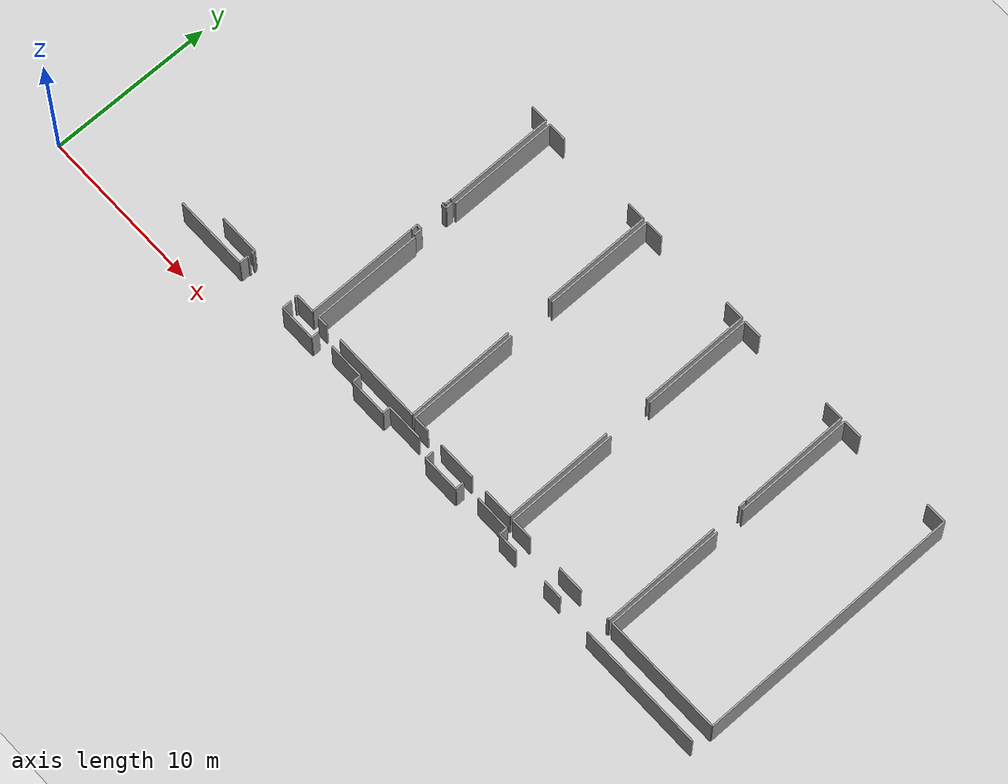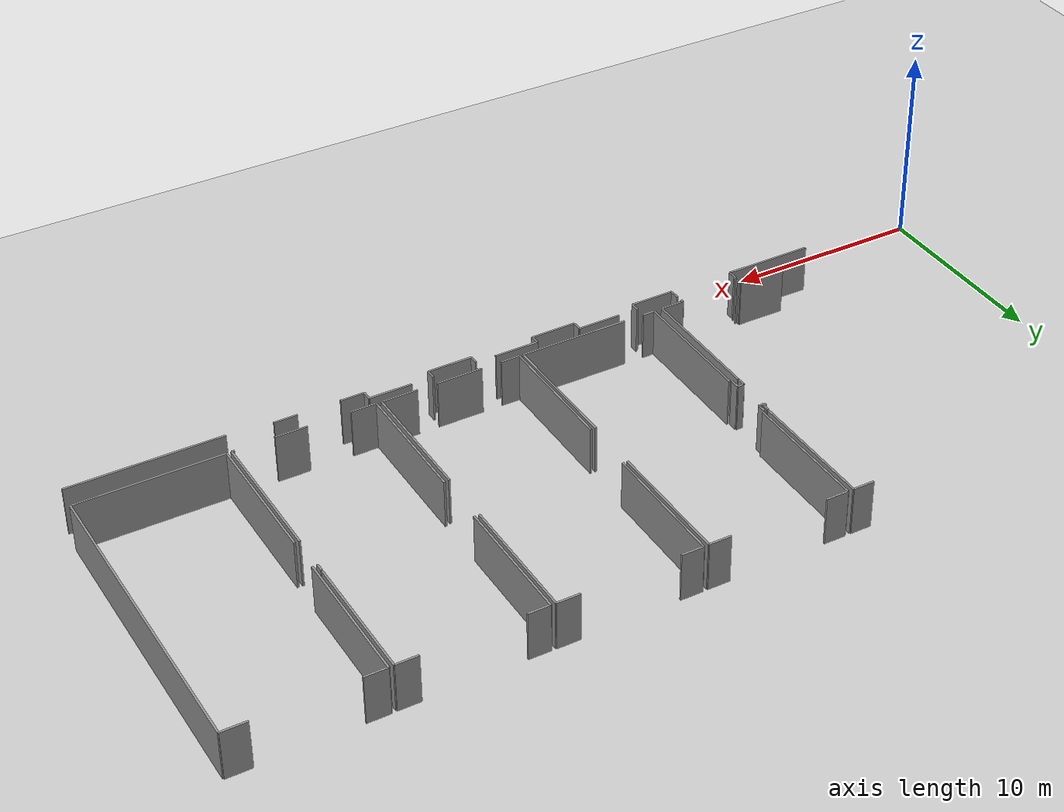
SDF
<sdf version="1.6">
 <world name="default">
  <model name="ground_plane">
   <static>1</static>
   <link name="link">
    <collision name="collision">
     <geometry><plane><normal>0 0 1</normal><size>100 100</size></plane></geometry>
     <surface><friction><ode><mu>100</mu><mu2>50</mu2></ode></friction></surface>
    </collision>
    <visual name="visual">
     <cast_shadows>0</cast_shadows>
     <geometry><plane><normal>0 0 1</normal><size>100 100</size></plane></geometry>
     <material>
      <script><uri>file://media/materials/scripts/gazebo.material</uri><name>Gazebo/Grey</name></script>
     </material>
    </visual>
   </link>
  </model>
  <model name="50045233">
   <static>1</static>
   <link name="Wall_8">
    <collision name="Wall_8_Collision">
     <geometry><box><size>0.318771612576 0.1 2.5</size></box></geometry>
     <pose>0.159385806288 0 1.25 0 0 0</pose>
    </collision>
    <visual name="Wall_8_Visual">
     <pose>0.159385806288 0 1.25 0 0 0</pose>
     <geometry><box><size>0.318771612576 0.1 2.5</size></box></geometry>
     <material>
      <script><uri>file://media/materials/scripts/gazebo.material</uri><name>Gazebo/Grey</name></script>
      <ambient>1 1 1 1</ambient>
     </material>
    </visual>
    <pose>63.6124488436 -6.74153738777 0 0 0 -1.57079632679</pose>
   </link>
   <link name="Wall_9">
    <collision name="Wall_9_Collision">
     <geometry><box><size>0.105834205768 0.1 2.5</size></box></geometry>
     <pose>0.0529171028838 0 1.25 0 0 0</pose>
    </collision>
    <visual name="Wall_9_Visual">
     <pose>0.0529171028838 0 1.25 0 0 0</pose>
     <geometry><box><size>0.105834205768 0.1 2.5</size></box></geometry>
     <material>
      <script><uri>file://media/materials/scripts/gazebo.material</uri><name>Gazebo/Grey</name></script>
      <ambient>1 1 1 1</ambient>
     </material>
    </visual>
    <pose>63.6124488436 -7.06030900035 0 0 0 3.14159265359</pose>
   </link>
   <link name="Wall_10">
    <collision name="Wall_10_Collision">
     <geometry><box><size>0.126265029663 0.1 2.5</size></box></geometry>
     <pose>0.0631325148314 0 1.25 0 0 0</pose>
    </collision>
    <visual name="Wall_10_Visual">
     <pose>0.0631325148314 0 1.25 0 0 0</pose>
     <geometry><box><size>0.126265029663 0.1 2.5</size></box></geometry>
     <material>
      <script><uri>file://media/materials/scripts/gazebo.material</uri><name>Gazebo/Grey</name></script>
      <ambient>1 1 1 1</ambient>
     </material>
    </visual>
    <pose>63.5066146379 -7.06030900035 0 0 0 -1.57079632679</pose>
   </link>
   <link name="Wall_11">
    <collision name="Wall_11_Collision">
     <geometry><box><size>0.296310396244 0.1 2.5</size></box></geometry>
     <pose>0.148155198122 0 1.25 0 0 0</pose>
    </collision>
    <visual name="Wall_11_Visual">
     <pose>0.148155198122 0 1.25 0 0 0</pose>
     <geometry><box><size>0.296310396244 0.1 2.5</size></box></geometry>
     <material>
      <script><uri>file://media/materials/scripts/gazebo.material</uri><name>Gazebo/Grey</name></script>
      <ambient>1 1 1 1</ambient>
     </material>
    </visual>
    <pose>63.5066146379 -7.18657403001 0 0 0 0.0</pose>
   </link>
   <link name="Wall_12">
    <collision name="Wall_12_Collision">
     <geometry><box><size>0.438945464928 0.1 2.5</size></box></geometry>
     <pose>0.219472732464 0 1.25 0 0 0</pose>
    </collision>
    <visual name="Wall_12_Visual">
     <pose>0.219472732464 0 1.25 0 0 0</pose>
     <geometry><box><size>0.438945464928 0.1 2.5</size></box></geometry>
     <material>
      <script><uri>file://media/materials/scripts/gazebo.material</uri><name>Gazebo/Grey</name></script>
      <ambient>1 1 1 1</ambient>
     </material>
    </visual>
    <pose>63.8029250341 -7.18657403001 0 0 0 1.57079632679</pose>
   </link>
   <link name="Wall_13">
    <collision name="Wall_13_Collision">
     <geometry><box><size>0.412169664668 0.1 2.5</size></box></geometry>
     <pose>0.206084832334 0 1.25 0 0 0</pose>
    </collision>
    <visual name="Wall_13_Visual">
     <pose>0.206084832334 0 1.25 0 0 0</pose>
     <geometry><box><size>0.412169664668 0.1 2.5</size></box></geometry>
     <material>
      <script><uri>file://media/materials/scripts/gazebo.material</uri><name>Gazebo/Grey</name></script>
      <ambient>1 1 1 1</ambient>
     </material>
    </visual>
    <pose>85.9797595254 -6.74762856508 0 0 0 -1.57079632679</pose>
   </link>
   <link name="Wall_14">
    <collision name="Wall_14_Collision">
     <geometry><box><size>7.19850258558 0.1 2.5</size></box></geometry>
     <pose>3.59925129279 0 1.25 0 0 0</pose>
    </collision>
    <visual name="Wall_14_Visual">
     <pose>3.59925129279 0 1.25 0 0 0</pose>
     <geometry><box><size>7.19850258558 0.1 2.5</size></box></geometry>
     <material>
      <script><uri>file://media/materials/scripts/gazebo.material</uri><name>Gazebo/Grey</name></script>
      <ambient>1 1 1 1</ambient>
     </material>
    </visual>
    <pose>85.9797595254 -8.92370165921 0 0 0 -1.57079632679</pose>
   </link>
   <link name="Wall_15">
    <collision name="Wall_15_Collision">
     <geometry><box><size>0.139716379556 0.1 2.5</size></box></geometry>
     <pose>0.0698581897782 0 1.25 0 0 0</pose>
    </collision>
    <visual name="Wall_15_Visual">
     <pose>0.0698581897782 0 1.25 0 0 0</pose>
     <geometry><box><size>0.139716379556 0.1 2.5</size></box></geometry>
     <material>
      <script><uri>file://media/materials/scripts/gazebo.material</uri><name>Gazebo/Grey</name></script>
      <ambient>1 1 1 1</ambient>
     </material>
    </visual>
    <pose>85.9797595254 -16.1222042448 0 0 0 3.14159265359</pose>
   </link>
   <link name="Wall_16">
    <collision name="Wall_16_Collision">
     <geometry><box><size>1.61073570001 0.1 2.5</size></box></geometry>
     <pose>0.805367850005 0 1.25 0 0 0</pose>
    </collision>
    <visual name="Wall_16_Visual">
     <pose>0.805367850005 0 1.25 0 0 0</pose>
     <geometry><box><size>1.61073570001 0.1 2.5</size></box></geometry>
     <material>
      <script><uri>file://media/materials/scripts/gazebo.material</uri><name>Gazebo/Grey</name></script>
      <ambient>1 1 1 1</ambient>
     </material>
    </visual>
    <pose>83.895561689 -16.1222042448 0 0 0 3.14159265359</pose>
   </link>
   <link name="Wall_17">
    <collision name="Wall_17_Collision">
     <geometry><box><size>1.30211604962 0.1 2.5</size></box></geometry>
     <pose>0.651058024809 0 1.25 0 0 0</pose>
    </collision>
    <visual name="Wall_17_Visual">
     <pose>0.651058024809 0 1.25 0 0 0</pose>
     <geometry><box><size>1.30211604962 0.1 2.5</size></box></geometry>
     <material>
      <script><uri>file://media/materials/scripts/gazebo.material</uri><name>Gazebo/Grey</name></script>
      <ambient>1 1 1 1</ambient>
     </material>
    </visual>
    <pose>80.1170013642 -16.1222042448 0 0 0 3.14159265359</pose>
   </link>
   <link name="Wall_18">
    <collision name="Wall_18_Collision">
     <geometry><box><size>6.72021826719 0.1 2.5</size></box></geometry>
     <pose>3.36010913359 0 1.25 0 0 0</pose>
    </collision>
    <visual name="Wall_18_Visual">
     <pose>3.36010913359 0 1.25 0 0 0</pose>
     <geometry><box><size>6.72021826719 0.1 2.5</size></box></geometry>
     <material>
      <script><uri>file://media/materials/scripts/gazebo.material</uri><name>Gazebo/Grey</name></script>
      <ambient>1 1 1 1</ambient>
     </material>
    </visual>
    <pose>78.8148853146 -16.1222042448 0 0 0 1.57079632679</pose>
   </link>
   <link name="Wall_19">
    <collision name="Wall_19_Collision">
     <geometry><box><size>0.479045715555 0.1 2.5</size></box></geometry>
     <pose>0.239522857777 0 1.25 0 0 0</pose>
    </collision>
    <visual name="Wall_19_Visual">
     <pose>0.239522857777 0 1.25 0 0 0</pose>
     <geometry><box><size>0.479045715555 0.1 2.5</size></box></geometry>
     <material>
      <script><uri>file://media/materials/scripts/gazebo.material</uri><name>Gazebo/Grey</name></script>
      <ambient>1 1 1 1</ambient>
     </material>
    </visual>
    <pose>63.8205640684 -9.4019859776 0 0 0 1.57079632679</pose>
   </link>
   <link name="Wall_20">
    <collision name="Wall_20_Collision">
     <geometry><box><size>0.324735890359 0.1 2.5</size></box></geometry>
     <pose>0.162367945179 0 1.25 0 0 0</pose>
    </collision>
    <visual name="Wall_20_Visual">
     <pose>0.162367945179 0 1.25 0 0 0</pose>
     <geometry><box><size>0.324735890359 0.1 2.5</size></box></geometry>
     <material>
      <script><uri>file://media/materials/scripts/gazebo.material</uri><name>Gazebo/Grey</name></script>
      <ambient>1 1 1 1</ambient>
     </material>
    </visual>
    <pose>63.8205640684 -8.92294026205 0 0 0 3.14159265359</pose>
   </link>
   <link name="Wall_21">
    <collision name="Wall_21_Collision">
     <geometry><box><size>0.393134735573 0.1 2.5</size></box></geometry>
     <pose>0.196567367787 0 1.25 0 0 0</pose>
    </collision>
    <visual name="Wall_21_Visual">
     <pose>0.196567367787 0 1.25 0 0 0</pose>
     <geometry><box><size>0.393134735573 0.1 2.5</size></box></geometry>
     <material>
      <script><uri>file://media/materials/scripts/gazebo.material</uri><name>Gazebo/Grey</name></script>
      <ambient>1 1 1 1</ambient>
     </material>
    </visual>
    <pose>63.495828178 -8.92294026205 0 0 0 -1.57079632679</pose>
   </link>
   <link name="Wall_52">
    <collision name="Wall_52_Collision">
     <geometry><box><size>6.67275784398 0.1 2.5</size></box></geometry>
     <pose>3.33637892199 0 1.25 0 0 0</pose>
    </collision>
    <visual name="Wall_52_Visual">
     <pose>3.33637892199 0 1.25 0 0 0</pose>
     <geometry><box><size>6.67275784398 0.1 2.5</size></box></geometry>
     <material>
      <script><uri>file://media/materials/scripts/gazebo.material</uri><name>Gazebo/Grey</name></script>
      <ambient>1 1 1 1</ambient>
     </material>
    </visual>
    <pose>63.6316106723 -6.68417880143 0 0 0 1.57079632679</pose>
   </link>
   <link name="Wall_53">
    <collision name="Wall_53_Collision">
     <geometry><box><size>1.07090511088 0.1 2.5</size></box></geometry>
     <pose>0.535452555439 0 1.25 0 0 0</pose>
    </collision>
    <visual name="Wall_53_Visual">
     <pose>0.535452555439 0 1.25 0 0 0</pose>
     <geometry><box><size>1.07090511088 0.1 2.5</size></box></geometry>
     <material>
      <script><uri>file://media/materials/scripts/gazebo.material</uri><name>Gazebo/Grey</name></script>
      <ambient>1 1 1 1</ambient>
     </material>
    </visual>
    <pose>63.6316106723 -0.0114209574569 0 0 0 3.14159265359</pose>
   </link>
   <link name="Wall_56">
    <collision name="Wall_56_Collision">
     <geometry><box><size>6.65181942197 0.1 2.5</size></box></geometry>
     <pose>3.32590971099 0 1.25 0 0 0</pose>
    </collision>
    <visual name="Wall_56_Visual">
     <pose>3.32590971099 0 1.25 0 0 0</pose>
     <geometry><box><size>6.65181942197 0.1 2.5</size></box></geometry>
     <material>
      <script><uri>file://media/materials/scripts/gazebo.material</uri><name>Gazebo/Grey</name></script>
      <ambient>1 1 1 1</ambient>
     </material>
    </visual>
    <pose>63.9269058723 -6.66755496336 0 0 0 1.57079632679</pose>
   </link>
   <link name="Wall_57">
    <collision name="Wall_57_Collision">
     <geometry><box><size>1.1188731322 0.1 2.5</size></box></geometry>
     <pose>0.559436566099 0 1.25 0 0 0</pose>
    </collision>
    <visual name="Wall_57_Visual">
     <pose>0.559436566099 0 1.25 0 0 0</pose>
     <geometry><box><size>1.1188731322 0.1 2.5</size></box></geometry>
     <material>
      <script><uri>file://media/materials/scripts/gazebo.material</uri><name>Gazebo/Grey</name></script>
      <ambient>1 1 1 1</ambient>
     </material>
    </visual>
    <pose>63.9269058723 -0.0157355413851 0 0 0 0.0</pose>
   </link>
   <link name="Wall_58">
    <collision name="Wall_58_Collision">
     <geometry><box><size>1.13181688398 0.1 2.5</size></box></geometry>
     <pose>0.565908441991 0 1.25 0 0 0</pose>
    </collision>
    <visual name="Wall_58_Visual">
     <pose>0.565908441991 0 1.25 0 0 0</pose>
     <geometry><box><size>1.13181688398 0.1 2.5</size></box></geometry>
     <material>
      <script><uri>file://media/materials/scripts/gazebo.material</uri><name>Gazebo/Grey</name></script>
      <ambient>1 1 1 1</ambient>
     </material>
    </visual>
    <pose>69.9795057263 -0.0157355413851 0 0 0 0.0</pose>
   </link>
   <link name="Wall_59">
    <collision name="Wall_59_Collision">
     <geometry><box><size>6.65183956517 0.1 2.5</size></box></geometry>
     <pose>3.32591978258 0 1.25 0 0 0</pose>
    </collision>
    <visual name="Wall_59_Visual">
     <pose>3.32591978258 0 1.25 0 0 0</pose>
     <geometry><box><size>6.65183956517 0.1 2.5</size></box></geometry>
     <material>
      <script><uri>file://media/materials/scripts/gazebo.material</uri><name>Gazebo/Grey</name></script>
      <ambient>1 1 1 1</ambient>
     </material>
    </visual>
    <pose>71.1113226103 -0.0157355413851 0 0 0 -1.56833534508</pose>
   </link>
   <link name="Wall_60">
    <collision name="Wall_60_Collision">
     <geometry><box><size>6.66374797754 0.1 2.5</size></box></geometry>
     <pose>3.33187398877 0 1.25 0 0 0</pose>
    </collision>
    <visual name="Wall_60_Visual">
     <pose>3.33187398877 0 1.25 0 0 0</pose>
     <geometry><box><size>6.66374797754 0.1 2.5</size></box></geometry>
     <material>
      <script><uri>file://media/materials/scripts/gazebo.material</uri><name>Gazebo/Grey</name></script>
      <ambient>1 1 1 1</ambient>
     </material>
    </visual>
    <pose>71.367786555 -6.67593033216 0 0 0 1.57079632679</pose>
   </link>
   <link name="Wall_61">
    <collision name="Wall_61_Collision">
     <geometry><box><size>1.11671584023 0.1 2.5</size></box></geometry>
     <pose>0.558357920117 0 1.25 0 0 0</pose>
    </collision>
    <visual name="Wall_61_Visual">
     <pose>0.558357920117 0 1.25 0 0 0</pose>
     <geometry><box><size>1.11671584023 0.1 2.5</size></box></geometry>
     <material>
      <script><uri>file://media/materials/scripts/gazebo.material</uri><name>Gazebo/Grey</name></script>
      <ambient>1 1 1 1</ambient>
     </material>
    </visual>
    <pose>71.367786555 -0.0121823546207 0 0 0 0.0</pose>
   </link>
   <link name="Wall_62">
    <collision name="Wall_62_Collision">
     <geometry><box><size>1.17356682846 0.1 2.5</size></box></geometry>
     <pose>0.586783414232 0 1.25 0 0 0</pose>
    </collision>
    <visual name="Wall_62_Visual">
     <pose>0.586783414232 0 1.25 0 0 0</pose>
     <geometry><box><size>1.17356682846 0.1 2.5</size></box></geometry>
     <material>
      <script><uri>file://media/materials/scripts/gazebo.material</uri><name>Gazebo/Grey</name></script>
      <ambient>1 1 1 1</ambient>
     </material>
    </visual>
    <pose>77.3867580343 -0.0121823546207 0 0 0 0.0</pose>
   </link>
   <link name="Wall_63">
    <collision name="Wall_63_Collision">
     <geometry><box><size>6.66375124476 0.1 2.5</size></box></geometry>
     <pose>3.33187562238 0 1.25 0 0 0</pose>
    </collision>
    <visual name="Wall_63_Visual">
     <pose>3.33187562238 0 1.25 0 0 0</pose>
     <geometry><box><size>6.66375124476 0.1 2.5</size></box></geometry>
     <material>
      <script><uri>file://media/materials/scripts/gazebo.material</uri><name>Gazebo/Grey</name></script>
      <ambient>1 1 1 1</ambient>
     </material>
    </visual>
    <pose>78.5603248628 -0.0121823546207 0 0 0 -1.57178657632</pose>
   </link>
   <link name="Wall_64">
    <collision name="Wall_64_Collision">
     <geometry><box><size>6.65258081914 0.1 2.5</size></box></geometry>
     <pose>3.32629040957 0 1.25 0 0 0</pose>
    </collision>
    <visual name="Wall_64_Visual">
     <pose>3.32629040957 0 1.25 0 0 0</pose>
     <geometry><box><size>6.65258081914 0.1 2.5</size></box></geometry>
     <material>
      <script><uri>file://media/materials/scripts/gazebo.material</uri><name>Gazebo/Grey</name></script>
      <ambient>1 1 1 1</ambient>
     </material>
    </visual>
    <pose>78.7967386821 -6.67961041845 0 0 0 1.57079632679</pose>
   </link>
   <link name="Wall_65">
    <collision name="Wall_65_Collision">
     <geometry><box><size>1.11367025158 0.1 2.5</size></box></geometry>
     <pose>0.556835125789 0 1.25 0 0 0</pose>
    </collision>
    <visual name="Wall_65_Visual">
     <pose>0.556835125789 0 1.25 0 0 0</pose>
     <geometry><box><size>1.11367025158 0.1 2.5</size></box></geometry>
     <material>
      <script><uri>file://media/materials/scripts/gazebo.material</uri><name>Gazebo/Grey</name></script>
      <ambient>1 1 1 1</ambient>
     </material>
    </visual>
    <pose>78.7967386821 -0.0270295993147 0 0 0 0.0</pose>
   </link>
   <link name="Wall_66">
    <collision name="Wall_66_Collision">
     <geometry><box><size>1.1356238698 0.1 2.5</size></box></geometry>
     <pose>0.567811934901 0 1.25 0 0 0</pose>
    </collision>
    <visual name="Wall_66_Visual">
     <pose>0.567811934901 0 1.25 0 0 0</pose>
     <geometry><box><size>1.1356238698 0.1 2.5</size></box></geometry>
     <material>
      <script><uri>file://media/materials/scripts/gazebo.material</uri><name>Gazebo/Grey</name></script>
      <ambient>1 1 1 1</ambient>
     </material>
    </visual>
    <pose>84.8370292821 -0.0270295993147 0 0 0 0.0</pose>
   </link>
   <link name="Wall_67">
    <collision name="Wall_67_Collision">
     <geometry><box><size>6.65258915702 0.1 2.5</size></box></geometry>
     <pose>3.32629457851 0 1.25 0 0 0</pose>
    </collision>
    <visual name="Wall_67_Visual">
     <pose>3.32629457851 0 1.25 0 0 0</pose>
     <geometry><box><size>6.65258915702 0.1 2.5</size></box></geometry>
     <material>
      <script><uri>file://media/materials/scripts/gazebo.material</uri><name>Gazebo/Grey</name></script>
      <ambient>1 1 1 1</ambient>
     </material>
    </visual>
    <pose>85.9726531519 -0.0270295993147 0 0 0 -1.5692130838</pose>
   </link>
   <link name="Wall_68">
    <collision name="Wall_68_Collision">
     <geometry><box><size>7.17731036452 0.1 2.5</size></box></geometry>
     <pose>3.58865518226 0 1.25 0 0 0</pose>
    </collision>
    <visual name="Wall_68_Visual">
     <pose>3.58865518226 0 1.25 0 0 0</pose>
     <geometry><box><size>7.17731036452 0.1 2.5</size></box></geometry>
     <material>
      <script><uri>file://media/materials/scripts/gazebo.material</uri><name>Gazebo/Grey</name></script>
      <ambient>1 1 1 1</ambient>
     </material>
    </visual>
    <pose>86.2192189334 -16.1106563878 0 0 0 1.57079632679</pose>
   </link>
   <link name="Wall_69">
    <collision name="Wall_69_Collision">
     <geometry><box><size>7.15243805717 0.1 2.5</size></box></geometry>
     <pose>3.57621902858 0 1.25 0 0 0</pose>
    </collision>
    <visual name="Wall_69_Visual">
     <pose>3.57621902858 0 1.25 0 0 0</pose>
     <geometry><box><size>7.15243805717 0.1 2.5</size></box></geometry>
     <material>
      <script><uri>file://media/materials/scripts/gazebo.material</uri><name>Gazebo/Grey</name></script>
      <ambient>1 1 1 1</ambient>
     </material>
    </visual>
    <pose>86.2192189334 -7.16195552172 0 0 0 1.57079632679</pose>
   </link>
   <link name="Wall_70">
    <collision name="Wall_70_Collision">
     <geometry><box><size>1.14184194664 0.1 2.5</size></box></geometry>
     <pose>0.570920973319 0 1.25 0 0 0</pose>
    </collision>
    <visual name="Wall_70_Visual">
     <pose>0.570920973319 0 1.25 0 0 0</pose>
     <geometry><box><size>1.14184194664 0.1 2.5</size></box></geometry>
     <material>
      <script><uri>file://media/materials/scripts/gazebo.material</uri><name>Gazebo/Grey</name></script>
      <ambient>1 1 1 1</ambient>
     </material>
    </visual>
    <pose>86.2192189334 -0.00951746454745 0 0 0 0.0</pose>
   </link>
   <link name="Wall_71">
    <collision name="Wall_71_Collision">
     <geometry><box><size>1.2681069763 0.1 2.5</size></box></geometry>
     <pose>0.634053488151 0 1.25 0 0 0</pose>
    </collision>
    <visual name="Wall_71_Visual">
     <pose>0.634053488151 0 1.25 0 0 0</pose>
     <geometry><box><size>1.2681069763 0.1 2.5</size></box></geometry>
     <material>
      <script><uri>file://media/materials/scripts/gazebo.material</uri><name>Gazebo/Grey</name></script>
      <ambient>1 1 1 1</ambient>
     </material>
    </visual>
    <pose>92.2700421941 -0.00951746454745 0 0 0 0.0</pose>
   </link>
   <link name="Wall_72">
    <collision name="Wall_72_Collision">
     <geometry><box><size>16.0847688842 0.1 2.5</size></box></geometry>
     <pose>8.04238444212 0 1.25 0 0 0</pose>
    </collision>
    <visual name="Wall_72_Visual">
     <pose>8.04238444212 0 1.25 0 0 0</pose>
     <geometry><box><size>16.0847688842 0.1 2.5</size></box></geometry>
     <material>
      <script><uri>file://media/materials/scripts/gazebo.material</uri><name>Gazebo/Grey</name></script>
      <ambient>1 1 1 1</ambient>
     </material>
    </visual>
    <pose>93.5381491704 -0.00951746454745 0 0 0 -1.57079632679</pose>
   </link>
   <link name="Wall_73">
    <collision name="Wall_73_Collision">
     <geometry><box><size>7.31894854416 0.1 2.5</size></box></geometry>
     <pose>3.65947427208 0 1.25 0 0 0</pose>
    </collision>
    <visual name="Wall_73_Visual">
     <pose>3.65947427208 0 1.25 0 0 0</pose>
     <geometry><box><size>7.31894854416 0.1 2.5</size></box></geometry>
     <material>
      <script><uri>file://media/materials/scripts/gazebo.material</uri><name>Gazebo/Grey</name></script>
      <ambient>1 1 1 1</ambient>
     </material>
    </visual>
    <pose>93.5381491704 -16.0942863488 0 0 0 -3.13935598632</pose>
   </link>
   <link name="Wall_74">
    <collision name="Wall_74_Collision">
     <geometry><box><size>1.82811459027 0.1 2.5</size></box></geometry>
     <pose>0.914057295137 0 1.25 0 0 0</pose>
    </collision>
    <visual name="Wall_74_Visual">
     <pose>0.914057295137 0 1.25 0 0 0</pose>
     <geometry><box><size>1.82811459027 0.1 2.5</size></box></geometry>
     <material>
      <script><uri>file://media/materials/scripts/gazebo.material</uri><name>Gazebo/Grey</name></script>
      <ambient>1 1 1 1</ambient>
     </material>
    </visual>
    <pose>78.5544874845 -16.1095142921 0 0 0 3.14159265359</pose>
   </link>
   <link name="Wall_75">
    <collision name="Wall_75_Collision">
     <geometry><box><size>2.33951968529 0.1 2.5</size></box></geometry>
     <pose>1.16975984264 0 1.25 0 0 0</pose>
    </collision>
    <visual name="Wall_75_Visual">
     <pose>1.16975984264 0 1.25 0 0 0</pose>
     <geometry><box><size>2.33951968529 0.1 2.5</size></box></geometry>
     <material>
      <script><uri>file://media/materials/scripts/gazebo.material</uri><name>Gazebo/Grey</name></script>
      <ambient>1 1 1 1</ambient>
     </material>
    </visual>
    <pose>75.700136417 -16.1095142921 0 0 0 3.14159265359</pose>
   </link>
   <link name="Wall_76">
    <collision name="Wall_76_Collision">
     <geometry><box><size>0.994003997335 0.1 2.5</size></box></geometry>
     <pose>0.497001998668 0 1.25 0 0 0</pose>
    </collision>
    <visual name="Wall_76_Visual">
     <pose>0.497001998668 0 1.25 0 0 0</pose>
     <geometry><box><size>0.994003997335 0.1 2.5</size></box></geometry>
     <material>
      <script><uri>file://media/materials/scripts/gazebo.material</uri><name>Gazebo/Grey</name></script>
      <ambient>1 1 1 1</ambient>
     </material>
    </visual>
    <pose>72.3447860157 -16.1095142921 0 0 0 3.14159265359</pose>
   </link>
   <link name="Wall_77">
    <collision name="Wall_77_Collision">
     <geometry><box><size>6.6435709527 0.1 2.5</size></box></geometry>
     <pose>3.32178547635 0 1.25 0 0 0</pose>
    </collision>
    <visual name="Wall_77_Visual">
     <pose>3.32178547635 0 1.25 0 0 0</pose>
     <geometry><box><size>6.6435709527 0.1 2.5</size></box></geometry>
     <material>
      <script><uri>file://media/materials/scripts/gazebo.material</uri><name>Gazebo/Grey</name></script>
      <ambient>1 1 1 1</ambient>
     </material>
    </visual>
    <pose>71.3507820183 -16.1095142921 0 0 0 1.57079632679</pose>
   </link>
   <link name="Wall_78">
    <collision name="Wall_78_Collision">
     <geometry><box><size>6.64357097209 0.1 2.5</size></box></geometry>
     <pose>3.32178548604 0 1.25 0 0 0</pose>
    </collision>
    <visual name="Wall_78_Visual">
     <pose>3.32178548604 0 1.25 0 0 0</pose>
     <geometry><box><size>6.64357097209 0.1 2.5</size></box></geometry>
     <material>
      <script><uri>file://media/materials/scripts/gazebo.material</uri><name>Gazebo/Grey</name></script>
      <ambient>1 1 1 1</ambient>
     </material>
    </visual>
    <pose>78.5539798864 -9.46594333936 0 0 0 -1.57071992239</pose>
   </link>
   <link name="Wall_79">
    <collision name="Wall_79_Collision">
     <geometry><box><size>5.54614384061 0.1 2.5</size></box></geometry>
     <pose>2.77307192031 0 1.25 0 0 0</pose>
    </collision>
    <visual name="Wall_79_Visual">
     <pose>2.77307192031 0 1.25 0 0 0</pose>
     <geometry><box><size>5.54614384061 0.1 2.5</size></box></geometry>
     <material>
      <script><uri>file://media/materials/scripts/gazebo.material</uri><name>Gazebo/Grey</name></script>
      <ambient>1 1 1 1</ambient>
     </material>
    </visual>
    <pose>71.1448240855 -16.1106563878 0 0 0 3.14159265359</pose>
   </link>
   <link name="Wall_80">
    <collision name="Wall_80_Collision">
     <geometry><box><size>0.633228641223 0.1 2.5</size></box></geometry>
     <pose>0.316614320612 0 1.25 0 0 0</pose>
    </collision>
    <visual name="Wall_80_Visual">
     <pose>0.316614320612 0 1.25 0 0 0</pose>
     <geometry><box><size>0.633228641223 0.1 2.5</size></box></geometry>
     <material>
      <script><uri>file://media/materials/scripts/gazebo.material</uri><name>Gazebo/Grey</name></script>
      <ambient>1 1 1 1</ambient>
     </material>
    </visual>
    <pose>64.5622918055 -16.1106563878 0 0 0 3.14159265359</pose>
   </link>
   <link name="Wall_81">
    <collision name="Wall_81_Collision">
     <geometry><box><size>6.64826623521 0.1 2.5</size></box></geometry>
     <pose>3.3241331176 0 1.25 0 0 0</pose>
    </collision>
    <visual name="Wall_81_Visual">
     <pose>3.3241331176 0 1.25 0 0 0</pose>
     <geometry><box><size>6.64826623521 0.1 2.5</size></box></geometry>
     <material>
      <script><uri>file://media/materials/scripts/gazebo.material</uri><name>Gazebo/Grey</name></script>
      <ambient>1 1 1 1</ambient>
     </material>
    </visual>
    <pose>63.9290631642 -16.1106563878 0 0 0 1.57079632679</pose>
   </link>
   <link name="Wall_82">
    <collision name="Wall_82_Collision">
     <geometry><box><size>6.64838488484 0.1 2.5</size></box></geometry>
     <pose>3.32419244242 0 1.25 0 0 0</pose>
    </collision>
    <visual name="Wall_82_Visual">
     <pose>3.32419244242 0 1.25 0 0 0</pose>
     <geometry><box><size>6.64838488484 0.1 2.5</size></box></geometry>
     <material>
      <script><uri>file://media/materials/scripts/gazebo.material</uri><name>Gazebo/Grey</name></script>
      <ambient>1 1 1 1</ambient>
     </material>
    </visual>
    <pose>71.1051045335 -9.4623901526 0 0 0 -1.56482197528</pose>
   </link>
   <link name="Wall_83">
    <collision name="Wall_83_Collision">
     <geometry><box><size>1.20288061927 0.1 2.5</size></box></geometry>
     <pose>0.601440309635 0 1.25 0 0 0</pose>
    </collision>
    <visual name="Wall_83_Visual">
     <pose>0.601440309635 0 1.25 0 0 0</pose>
     <geometry><box><size>1.20288061927 0.1 2.5</size></box></geometry>
     <material>
      <script><uri>file://media/materials/scripts/gazebo.material</uri><name>Gazebo/Grey</name></script>
      <ambient>1 1 1 1</ambient>
     </material>
    </visual>
    <pose>63.4877066083 -16.1222042448 0 0 0 3.14159265359</pose>
   </link>
   <link name="Wall_84">
    <collision name="Wall_84_Collision">
     <geometry><box><size>0.165476983598 0.1 2.5</size></box></geometry>
     <pose>0.0827384917991 0 1.25 0 0 0</pose>
    </collision>
    <visual name="Wall_84_Visual">
     <pose>0.0827384917991 0 1.25 0 0 0</pose>
     <geometry><box><size>0.165476983598 0.1 2.5</size></box></geometry>
     <material>
      <script><uri>file://media/materials/scripts/gazebo.material</uri><name>Gazebo/Grey</name></script>
      <ambient>1 1 1 1</ambient>
     </material>
    </visual>
    <pose>62.284825989 -16.1222042448 0 0 0 -1.57079632679</pose>
   </link>
   <link name="Wall_85">
    <collision name="Wall_85_Collision">
     <geometry><box><size>0.125249833444 0.1 2.5</size></box></geometry>
     <pose>0.0626249167222 0 1.25 0 0 0</pose>
    </collision>
    <visual name="Wall_85_Visual">
     <pose>0.0626249167222 0 1.25 0 0 0</pose>
     <geometry><box><size>0.125249833444 0.1 2.5</size></box></geometry>
     <material>
      <script><uri>file://media/materials/scripts/gazebo.material</uri><name>Gazebo/Grey</name></script>
      <ambient>1 1 1 1</ambient>
     </material>
    </visual>
    <pose>59.0792170299 -16.2876812284 0 0 0 3.14159265359</pose>
   </link>
   <link name="Wall_86">
    <collision name="Wall_86_Collision">
     <geometry><box><size>0.174867548618 0.1 2.5</size></box></geometry>
     <pose>0.0874337743092 0 1.25 0 0 0</pose>
    </collision>
    <visual name="Wall_86_Visual">
     <pose>0.0874337743092 0 1.25 0 0 0</pose>
     <geometry><box><size>0.174867548618 0.1 2.5</size></box></geometry>
     <material>
      <script><uri>file://media/materials/scripts/gazebo.material</uri><name>Gazebo/Grey</name></script>
      <ambient>1 1 1 1</ambient>
     </material>
    </visual>
    <pose>58.9539671965 -16.2876812284 0 0 0 1.57079632679</pose>
   </link>
   <link name="Wall_87">
    <collision name="Wall_87_Collision">
     <geometry><box><size>2.4613432315 0.1 2.5</size></box></geometry>
     <pose>1.23067161575 0 1.25 0 0 0</pose>
    </collision>
    <visual name="Wall_87_Visual">
     <pose>1.23067161575 0 1.25 0 0 0</pose>
     <geometry><box><size>2.4613432315 0.1 2.5</size></box></geometry>
     <material>
      <script><uri>file://media/materials/scripts/gazebo.material</uri><name>Gazebo/Grey</name></script>
      <ambient>1 1 1 1</ambient>
     </material>
    </visual>
    <pose>58.9539671965 -16.1128136798 0 0 0 3.14159265359</pose>
   </link>
   <link name="Wall_89">
    <collision name="Wall_89_Collision">
     <geometry><box><size>6.74217399204 0.1 2.5</size></box></geometry>
     <pose>3.37108699602 0 1.25 0 0 0</pose>
    </collision>
    <visual name="Wall_89_Visual">
     <pose>3.37108699602 0 1.25 0 0 0</pose>
     <geometry><box><size>6.74217399204 0.1 2.5</size></box></geometry>
     <material>
      <script><uri>file://media/materials/scripts/gazebo.material</uri><name>Gazebo/Grey</name></script>
      <ambient>1 1 1 1</ambient>
     </material>
    </visual>
    <pose>63.4930363884 -9.38003235938 0 0 0 -1.57158684046</pose>
   </link>
   <link name="Wall_307">
    <collision name="Wall_307_Collision">
     <geometry><box><size>7.73452618889 0.1 2.5</size></box></geometry>
     <pose>3.86726309444 0 1.25 0 0 0</pose>
    </collision>
    <visual name="Wall_307_Visual">
     <pose>3.86726309444 0 1.25 0 0 0</pose>
     <geometry><box><size>7.73452618889 0.1 2.5</size></box></geometry>
     <material>
      <script><uri>file://media/materials/scripts/gazebo.material</uri><name>Gazebo/Grey</name></script>
      <ambient>1 1 1 1</ambient>
     </material>
    </visual>
    <pose>85.7205037911 -17.3580787412 0 0 0 0.0</pose>
   </link>
   <link name="Wall_320">
    <collision name="Wall_320_Collision">
     <geometry><box><size>1.17394752705 0.1 2.5</size></box></geometry>
     <pose>0.586973763523 0 1.25 0 0 0</pose>
    </collision>
    <visual name="Wall_320_Visual">
     <pose>0.586973763523 0 1.25 0 0 0</pose>
     <geometry><box><size>1.17394752705 0.1 2.5</size></box></geometry>
     <material>
      <script><uri>file://media/materials/scripts/gazebo.material</uri><name>Gazebo/Grey</name></script>
      <ambient>1 1 1 1</ambient>
     </material>
    </visual>
    <pose>83.4781891437 -17.1470448273 0 0 0 3.14159265359</pose>
   </link>
   <link name="Wall_321">
    <collision name="Wall_321_Collision">
     <geometry><box><size>1.22483423749 0.1 2.5</size></box></geometry>
     <pose>0.612417118746 0 1.25 0 0 0</pose>
    </collision>
    <visual name="Wall_321_Visual">
     <pose>0.612417118746 0 1.25 0 0 0</pose>
     <geometry><box><size>1.22483423749 0.1 2.5</size></box></geometry>
     <material>
      <script><uri>file://media/materials/scripts/gazebo.material</uri><name>Gazebo/Grey</name></script>
      <ambient>1 1 1 1</ambient>
     </material>
    </visual>
    <pose>80.1501221408 -17.1470448273 0 0 0 3.14159265359</pose>
   </link>
   <link name="Wall_322">
    <collision name="Wall_322_Collision">
     <geometry><box><size>0.495161955522 0.1 2.5</size></box></geometry>
     <pose>0.247580977761 0 1.25 0 0 0</pose>
    </collision>
    <visual name="Wall_322_Visual">
     <pose>0.247580977761 0 1.25 0 0 0</pose>
     <geometry><box><size>0.495161955522 0.1 2.5</size></box></geometry>
     <material>
      <script><uri>file://media/materials/scripts/gazebo.material</uri><name>Gazebo/Grey</name></script>
      <ambient>1 1 1 1</ambient>
     </material>
    </visual>
    <pose>78.9252879033 -17.1470448273 0 0 0 1.57079632679</pose>
   </link>
   <link name="Wall_323">
    <collision name="Wall_323_Collision">
     <geometry><box><size>2.18216427144 0.1 2.5</size></box></geometry>
     <pose>1.09108213572 0 1.25 0 0 0</pose>
    </collision>
    <visual name="Wall_323_Visual">
     <pose>1.09108213572 0 1.25 0 0 0</pose>
     <geometry><box><size>2.18216427144 0.1 2.5</size></box></geometry>
     <material>
      <script><uri>file://media/materials/scripts/gazebo.material</uri><name>Gazebo/Grey</name></script>
      <ambient>1 1 1 1</ambient>
     </material>
    </visual>
    <pose>78.9252879033 -16.6518828717 0 0 0 3.14159265359</pose>
   </link>
   <link name="Wall_324">
    <collision name="Wall_324_Collision">
     <geometry><box><size>0.51216649218 0.1 2.5</size></box></geometry>
     <pose>0.25608324609 0 1.25 0 0 0</pose>
    </collision>
    <visual name="Wall_324_Visual">
     <pose>0.25608324609 0 1.25 0 0 0</pose>
     <geometry><box><size>0.51216649218 0.1 2.5</size></box></geometry>
     <material>
      <script><uri>file://media/materials/scripts/gazebo.material</uri><name>Gazebo/Grey</name></script>
      <ambient>1 1 1 1</ambient>
     </material>
    </visual>
    <pose>75.6250118968 -16.6518828717 0 0 0 -1.57079632679</pose>
   </link>
   <link name="Wall_325">
    <collision name="Wall_325_Collision">
     <geometry><box><size>2.26947114622 0.1 2.5</size></box></geometry>
     <pose>1.13473557311 0 1.25 0 0 0</pose>
    </collision>
    <visual name="Wall_325_Visual">
     <pose>1.13473557311 0 1.25 0 0 0</pose>
     <geometry><box><size>2.26947114622 0.1 2.5</size></box></geometry>
     <material>
      <script><uri>file://media/materials/scripts/gazebo.material</uri><name>Gazebo/Grey</name></script>
      <ambient>1 1 1 1</ambient>
     </material>
    </visual>
    <pose>75.6250118968 -17.1640493639 0 0 0 3.14159265359</pose>
   </link>
   <link name="Wall_326">
    <collision name="Wall_326_Collision">
     <geometry><box><size>0.483867897592 0.1 2.5</size></box></geometry>
     <pose>0.241933948796 0 1.25 0 0 0</pose>
    </collision>
    <visual name="Wall_326_Visual">
     <pose>0.241933948796 0 1.25 0 0 0</pose>
     <geometry><box><size>0.483867897592 0.1 2.5</size></box></geometry>
     <material>
      <script><uri>file://media/materials/scripts/gazebo.material</uri><name>Gazebo/Grey</name></script>
      <ambient>1 1 1 1</ambient>
     </material>
    </visual>
    <pose>73.3555407506 -17.1640493639 0 0 0 1.57079632679</pose>
   </link>
   <link name="Wall_327">
    <collision name="Wall_327_Collision">
     <geometry><box><size>2.24459883887 0.1 2.5</size></box></geometry>
     <pose>1.12229941943 0 1.25 0 0 0</pose>
    </collision>
    <visual name="Wall_327_Visual">
     <pose>1.12229941943 0 1.25 0 0 0</pose>
     <geometry><box><size>2.24459883887 0.1 2.5</size></box></geometry>
     <material>
      <script><uri>file://media/materials/scripts/gazebo.material</uri><name>Gazebo/Grey</name></script>
      <ambient>1 1 1 1</ambient>
     </material>
    </visual>
    <pose>72.3209289045 -16.6801814663 0 0 0 3.14159265359</pose>
   </link>
   <link name="Wall_328">
    <collision name="Wall_328_Collision">
     <geometry><box><size>0.475619428318 0.1 2.5</size></box></geometry>
     <pose>0.237809714159 0 1.25 0 0 0</pose>
    </collision>
    <visual name="Wall_328_Visual">
     <pose>0.237809714159 0 1.25 0 0 0</pose>
     <geometry><box><size>0.475619428318 0.1 2.5</size></box></geometry>
     <material>
      <script><uri>file://media/materials/scripts/gazebo.material</uri><name>Gazebo/Grey</name></script>
      <ambient>1 1 1 1</ambient>
     </material>
    </visual>
    <pose>70.0763300657 -16.6801814663 0 0 0 -1.57079632679</pose>
   </link>
   <link name="Wall_329">
    <collision name="Wall_329_Collision">
     <geometry><box><size>2.29840423844 0.1 2.5</size></box></geometry>
     <pose>1.14920211922 0 1.25 0 0 0</pose>
    </collision>
    <visual name="Wall_329_Visual">
     <pose>1.14920211922 0 1.25 0 0 0</pose>
     <geometry><box><size>2.29840423844 0.1 2.5</size></box></geometry>
     <material>
      <script><uri>file://media/materials/scripts/gazebo.material</uri><name>Gazebo/Grey</name></script>
      <ambient>1 1 1 1</ambient>
     </material>
    </visual>
    <pose>70.0763300657 -17.1558008946 0 0 0 3.14159265359</pose>
   </link>
   <link name="Wall_330">
    <collision name="Wall_330_Collision">
     <geometry><box><size>0.493766060721 0.1 2.5</size></box></geometry>
     <pose>0.246883030361 0 1.25 0 0 0</pose>
    </collision>
    <visual name="Wall_330_Visual">
     <pose>0.246883030361 0 1.25 0 0 0</pose>
     <geometry><box><size>0.493766060721 0.1 2.5</size></box></geometry>
     <material>
      <script><uri>file://media/materials/scripts/gazebo.material</uri><name>Gazebo/Grey</name></script>
      <ambient>1 1 1 1</ambient>
     </material>
    </visual>
    <pose>67.7779258272 -17.1558008946 0 0 0 1.57079632679</pose>
   </link>
   <link name="Wall_331">
    <collision name="Wall_331_Collision">
     <geometry><box><size>2.1829256686 0.1 2.5</size></box></geometry>
     <pose>1.0914628343 0 1.25 0 0 0</pose>
    </collision>
    <visual name="Wall_331_Visual">
     <pose>1.0914628343 0 1.25 0 0 0</pose>
     <geometry><box><size>2.1829256686 0.1 2.5</size></box></geometry>
     <material>
      <script><uri>file://media/materials/scripts/gazebo.material</uri><name>Gazebo/Grey</name></script>
      <ambient>1 1 1 1</ambient>
     </material>
    </visual>
    <pose>67.7779258272 -16.6620348339 0 0 0 3.14159265359</pose>
   </link>
   <link name="Wall_332">
    <collision name="Wall_332_Collision">
     <geometry><box><size>0.466863360934 0.1 2.5</size></box></geometry>
     <pose>0.233431680467 0 1.25 0 0 0</pose>
    </collision>
    <visual name="Wall_332_Visual">
     <pose>0.233431680467 0 1.25 0 0 0</pose>
     <geometry><box><size>0.466863360934 0.1 2.5</size></box></geometry>
     <material>
      <script><uri>file://media/materials/scripts/gazebo.material</uri><name>Gazebo/Grey</name></script>
      <ambient>1 1 1 1</ambient>
     </material>
    </visual>
    <pose>64.5413533835 -16.6620348339 0 0 0 -1.57079632679</pose>
   </link>
   <link name="Wall_333">
    <collision name="Wall_333_Collision">
     <geometry><box><size>2.2270867041 0.1 2.5</size></box></geometry>
     <pose>1.11354335205 0 1.25 0 0 0</pose>
    </collision>
    <visual name="Wall_333_Visual">
     <pose>1.11354335205 0 1.25 0 0 0</pose>
     <geometry><box><size>2.2270867041 0.1 2.5</size></box></geometry>
     <material>
      <script><uri>file://media/materials/scripts/gazebo.material</uri><name>Gazebo/Grey</name></script>
      <ambient>1 1 1 1</ambient>
     </material>
    </visual>
    <pose>64.5413533835 -17.1288981949 0 0 0 3.14159265359</pose>
   </link>
   <link name="Wall_334">
    <collision name="Wall_334_Collision">
     <geometry><box><size>0.555185431934 0.1 2.5</size></box></geometry>
     <pose>0.277592715967 0 1.25 0 0 0</pose>
    </collision>
    <visual name="Wall_334_Visual">
     <pose>0.277592715967 0 1.25 0 0 0</pose>
     <geometry><box><size>0.555185431934 0.1 2.5</size></box></geometry>
     <material>
      <script><uri>file://media/materials/scripts/gazebo.material</uri><name>Gazebo/Grey</name></script>
      <ambient>1 1 1 1</ambient>
     </material>
    </visual>
    <pose>62.3142666794 -17.1288981949 0 0 0 1.57079632679</pose>
   </link>
   <link name="Wall_335">
    <collision name="Wall_335_Collision">
     <geometry><box><size>0.11509787126 0.1 2.5</size></box></geometry>
     <pose>0.0575489356302 0 1.25 0 0 0</pose>
    </collision>
    <visual name="Wall_335_Visual">
     <pose>0.0575489356302 0 1.25 0 0 0</pose>
     <geometry><box><size>0.11509787126 0.1 2.5</size></box></geometry>
     <material>
      <script><uri>file://media/materials/scripts/gazebo.material</uri><name>Gazebo/Grey</name></script>
      <ambient>1 1 1 1</ambient>
     </material>
    </visual>
    <pose>59.0449541575 -16.5737127629 0 0 0 3.14159265359</pose>
   </link>
   <link name="Wall_336">
    <collision name="Wall_336_Collision">
     <geometry><box><size>0.544525871641 0.1 2.5</size></box></geometry>
     <pose>0.272262935821 0 1.25 0 0 0</pose>
    </collision>
    <visual name="Wall_336_Visual">
     <pose>0.272262935821 0 1.25 0 0 0</pose>
     <geometry><box><size>0.544525871641 0.1 2.5</size></box></geometry>
     <material>
      <script><uri>file://media/materials/scripts/gazebo.material</uri><name>Gazebo/Grey</name></script>
      <ambient>1 1 1 1</ambient>
     </material>
    </visual>
    <pose>58.9298562863 -16.5737127629 0 0 0 -1.57079632679</pose>
   </link>
   <link name="Wall_337">
    <collision name="Wall_337_Collision">
     <geometry><box><size>4.50988230069 0.1 2.5</size></box></geometry>
     <pose>2.25494115034 0 1.25 0 0 0</pose>
    </collision>
    <visual name="Wall_337_Visual">
     <pose>2.25494115034 0 1.25 0 0 0</pose>
     <geometry><box><size>4.50988230069 0.1 2.5</size></box></geometry>
     <material>
      <script><uri>file://media/materials/scripts/gazebo.material</uri><name>Gazebo/Grey</name></script>
      <ambient>1 1 1 1</ambient>
     </material>
    </visual>
    <pose>58.9298562863 -17.1182386346 0 0 0 3.14159265359</pose>
   </link>
   <pose>-46.75 19.2209891818 0 0 0 0</pose>
  </model>
 </world>
</sdf>
